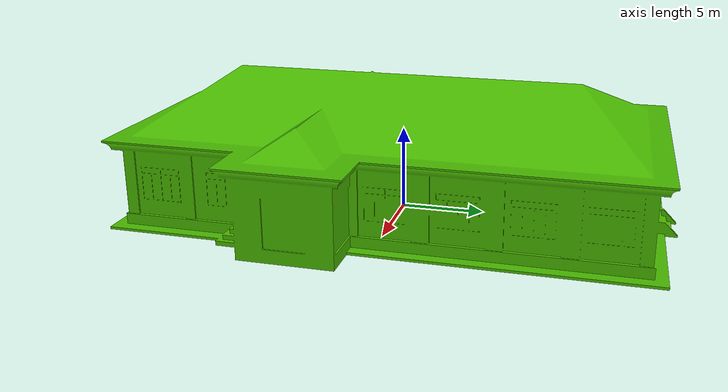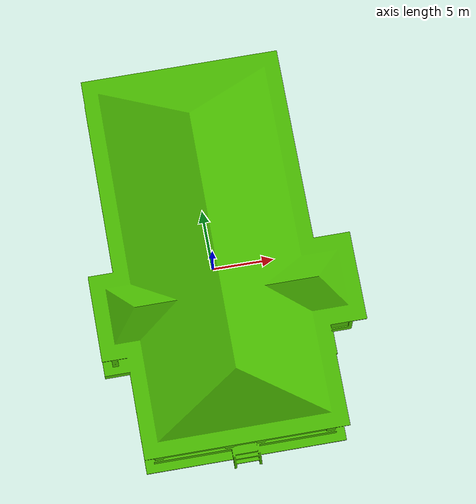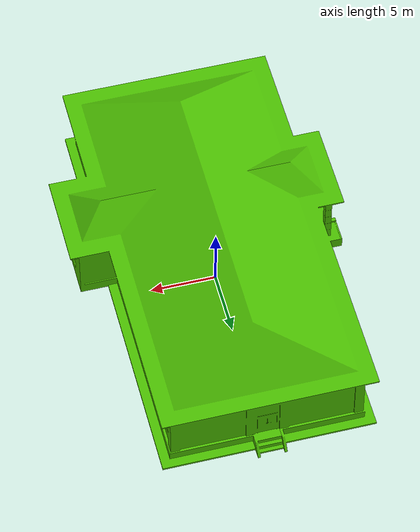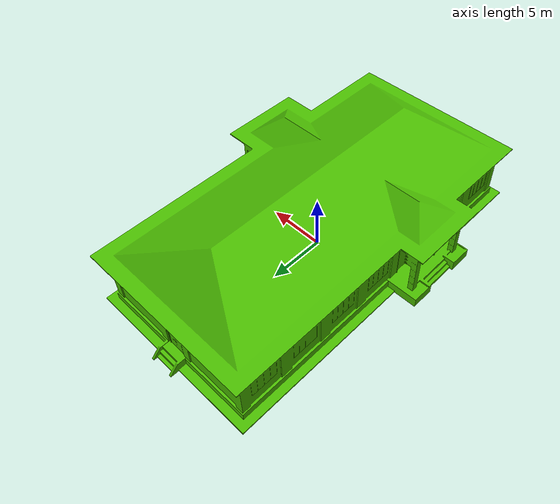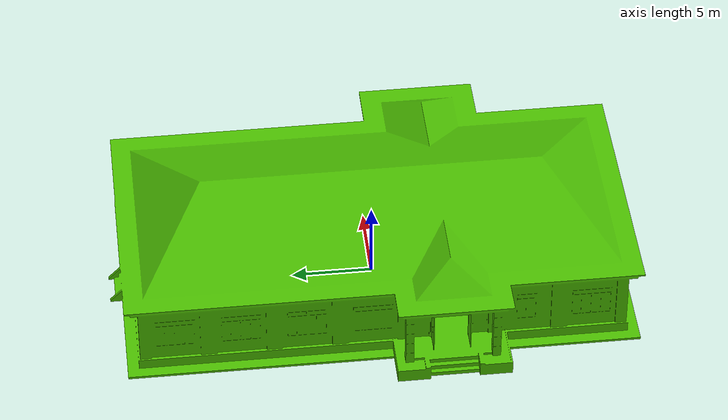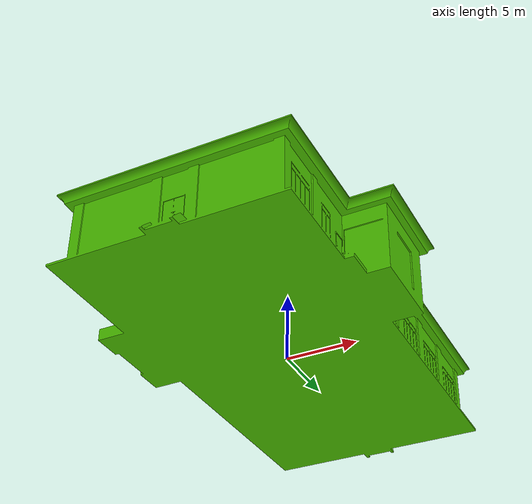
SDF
<?xml version="1.0" ?>
<sdf version="1.8">
  <model name="Electrical_Building_1">
    <static>true</static>
    <link name="link">
      <collision name="collision">
        <geometry>
          <mesh>
            <uri>model://Electrical_Building_1/Meshes/Electrical_Building_1.stl</uri>
            <scale>0.001 0.001 0.001</scale>
          </mesh>
        </geometry>
      </collision>

      <visual name="visual">
        <geometry>
          <mesh>
            <uri>model://Electrical_Building_1/Meshes/Electrical_Building_1.stl</uri>
            <scale>0.001 0.001 0.001</scale>
          </mesh>
        </geometry>
        <material>
          <diffuse>0.294 0.741 0 1</diffuse>
        </material>
      </visual>
    </link>
  </model>
</sdf>
